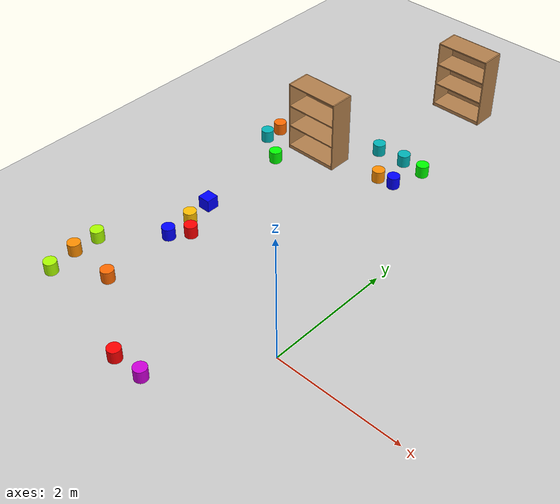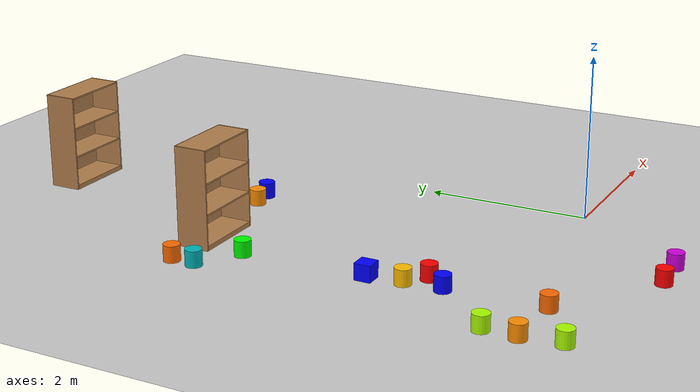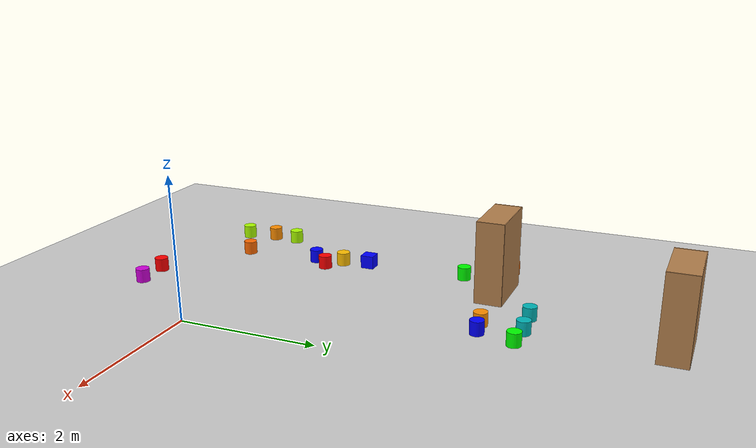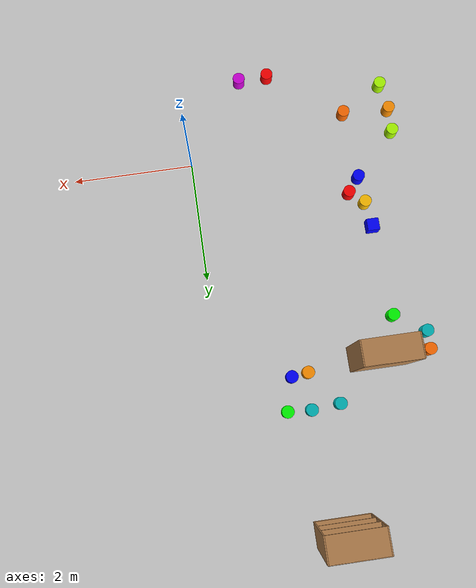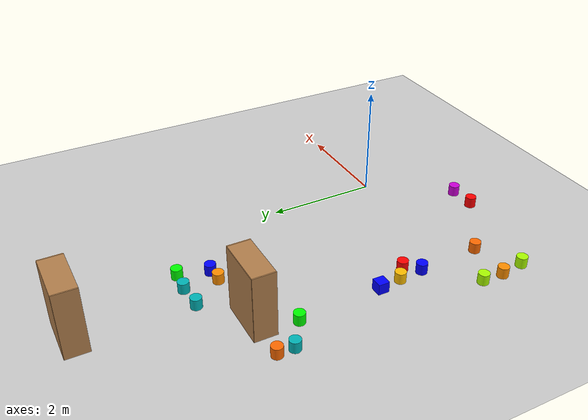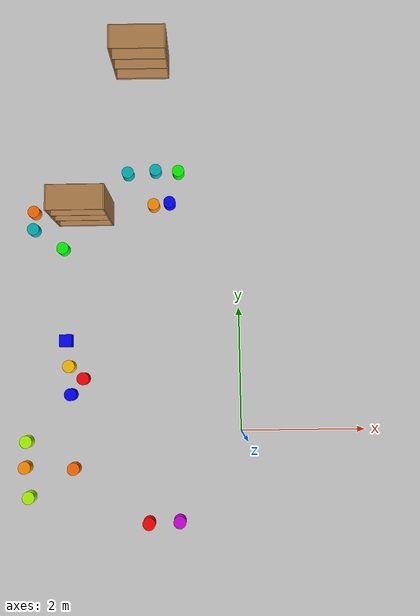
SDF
<sdf version="1.6">
 <world name="default">
  <model name="ground_plane">
   <static>1</static>
   <link name="link">
    <collision name="collision">
     <geometry><plane><normal>0 0 1</normal><size>100 100</size></plane></geometry>
     <surface>
      <contact><collide_bitmask>65535</collide_bitmask></contact>
      <friction><ode><mu>100</mu><mu2>50</mu2></ode></friction>
     </surface>
    </collision>
    <visual name="visual">
     <cast_shadows>0</cast_shadows>
     <geometry><plane><normal>0 0 1</normal><size>100 100</size></plane></geometry>
     <material>
      <script><uri>file://media/materials/scripts/gazebo.material</uri><name>Gazebo/Grey</name></script>
     </material>
    </visual>
   </link>
  </model>
  <model name="bookshelf_0">
   <static>1</static>
   <link name="link">
    <inertial><mass>1</mass></inertial>
    <collision name="back">
     <pose>0 0.005 0.6 0 -0 0</pose>
     <geometry><box><size>0.9 0.01 1.2</size></box></geometry>
    </collision>
    <visual name="visual1">
     <pose>0 0.005 0.6 0 -0 0</pose>
     <geometry><box><size>0.9 0.01 1.2</size></box></geometry>
     <material>
      <script><uri>file://media/materials/scripts/gazebo.material</uri><name>Gazebo/Wood</name></script>
     </material>
    </visual>
    <collision name="left_side">
     <pose>0.45 -0.195 0.6 0 -0 0</pose>
     <geometry><box><size>0.02 0.4 1.2</size></box></geometry>
    </collision>
    <visual name="visual2">
     <pose>0.45 -0.195 0.6 0 -0 0</pose>
     <geometry><box><size>0.02 0.4 1.2</size></box></geometry>
     <material>
      <script><uri>file://media/materials/scripts/gazebo.material</uri><name>Gazebo/Wood</name></script>
     </material>
    </visual>
    <collision name="right_side">
     <pose>-0.45 -0.195 0.6 0 -0 0</pose>
     <geometry><box><size>0.02 0.4 1.2</size></box></geometry>
    </collision>
    <visual name="visual3">
     <pose>-0.45 -0.195 0.6 0 -0 0</pose>
     <geometry><box><size>0.02 0.4 1.2</size></box></geometry>
     <material>
      <script><uri>file://media/materials/scripts/gazebo.material</uri><name>Gazebo/Wood</name></script>
     </material>
    </visual>
    <collision name="bottom">
     <pose>0 -0.195 0.03 0 -0 0</pose>
     <geometry><box><size>0.88 0.4 0.06</size></box></geometry>
    </collision>
    <visual name="visual4">
     <pose>0 -0.195 0.03 0 -0 0</pose>
     <geometry><box><size>0.88 0.4 0.06</size></box></geometry>
     <material>
      <script><uri>file://media/materials/scripts/gazebo.material</uri><name>Gazebo/Wood</name></script>
     </material>
    </visual>
    <collision name="top">
     <pose>0 -0.195 1.19 0 -0 0</pose>
     <geometry><box><size>0.88 0.4 0.02</size></box></geometry>
    </collision>
    <visual name="visual5">
     <pose>0 -0.195 1.19 0 -0 0</pose>
     <geometry><box><size>0.88 0.4 0.02</size></box></geometry>
     <material>
      <script><uri>file://media/materials/scripts/gazebo.material</uri><name>Gazebo/Wood</name></script>
     </material>
    </visual>
    <collision name="low_shelf">
     <pose>0 -0.195 0.43 0 -0 0</pose>
     <geometry><box><size>0.88 0.4 0.02</size></box></geometry>
    </collision>
    <visual name="visual6">
     <pose>0 -0.195 0.43 0 -0 0</pose>
     <geometry><box><size>0.88 0.4 0.02</size></box></geometry>
     <material>
      <script><uri>file://media/materials/scripts/gazebo.material</uri><name>Gazebo/Wood</name></script>
     </material>
    </visual>
    <collision name="high_shelf">
     <pose>0 -0.195 0.8 0 -0 0</pose>
     <geometry><box><size>0.88 0.4 0.02</size></box></geometry>
    </collision>
    <visual name="visual7">
     <pose>0 -0.195 0.8 0 -0 0</pose>
     <geometry><box><size>0.88 0.4 0.02</size></box></geometry>
     <material>
      <script><uri>file://media/materials/scripts/gazebo.material</uri><name>Gazebo/Wood</name></script>
     </material>
    </visual>
   </link>
   <pose>-2.53858 3.82708 0 0 -0 0</pose>
  </model>
  <model name="bookshelf_1">
   <static>1</static>
   <link name="link">
    <inertial><mass>1</mass></inertial>
    <collision name="back">
     <pose>0 0.005 0.6 0 -0 0</pose>
     <geometry><box><size>0.9 0.01 1.2</size></box></geometry>
    </collision>
    <visual name="visual1">
     <pose>0 0.005 0.6 0 -0 0</pose>
     <geometry><box><size>0.9 0.01 1.2</size></box></geometry>
     <material>
      <script><uri>file://media/materials/scripts/gazebo.material</uri><name>Gazebo/Wood</name></script>
     </material>
    </visual>
    <collision name="left_side">
     <pose>0.45 -0.195 0.6 0 -0 0</pose>
     <geometry><box><size>0.02 0.4 1.2</size></box></geometry>
    </collision>
    <visual name="visual2">
     <pose>0.45 -0.195 0.6 0 -0 0</pose>
     <geometry><box><size>0.02 0.4 1.2</size></box></geometry>
     <material>
      <script><uri>file://media/materials/scripts/gazebo.material</uri><name>Gazebo/Wood</name></script>
     </material>
    </visual>
    <collision name="right_side">
     <pose>-0.45 -0.195 0.6 0 -0 0</pose>
     <geometry><box><size>0.02 0.4 1.2</size></box></geometry>
    </collision>
    <visual name="visual3">
     <pose>-0.45 -0.195 0.6 0 -0 0</pose>
     <geometry><box><size>0.02 0.4 1.2</size></box></geometry>
     <material>
      <script><uri>file://media/materials/scripts/gazebo.material</uri><name>Gazebo/Wood</name></script>
     </material>
    </visual>
    <collision name="bottom">
     <pose>0 -0.195 0.03 0 -0 0</pose>
     <geometry><box><size>0.88 0.4 0.06</size></box></geometry>
    </collision>
    <visual name="visual4">
     <pose>0 -0.195 0.03 0 -0 0</pose>
     <geometry><box><size>0.88 0.4 0.06</size></box></geometry>
     <material>
      <script><uri>file://media/materials/scripts/gazebo.material</uri><name>Gazebo/Wood</name></script>
     </material>
    </visual>
    <collision name="top">
     <pose>0 -0.195 1.19 0 -0 0</pose>
     <geometry><box><size>0.88 0.4 0.02</size></box></geometry>
    </collision>
    <visual name="visual5">
     <pose>0 -0.195 1.19 0 -0 0</pose>
     <geometry><box><size>0.88 0.4 0.02</size></box></geometry>
     <material>
      <script><uri>file://media/materials/scripts/gazebo.material</uri><name>Gazebo/Wood</name></script>
     </material>
    </visual>
    <collision name="low_shelf">
     <pose>0 -0.195 0.43 0 -0 0</pose>
     <geometry><box><size>0.88 0.4 0.02</size></box></geometry>
    </collision>
    <visual name="visual6">
     <pose>0 -0.195 0.43 0 -0 0</pose>
     <geometry><box><size>0.88 0.4 0.02</size></box></geometry>
     <material>
      <script><uri>file://media/materials/scripts/gazebo.material</uri><name>Gazebo/Wood</name></script>
     </material>
    </visual>
    <collision name="high_shelf">
     <pose>0 -0.195 0.8 0 -0 0</pose>
     <geometry><box><size>0.88 0.4 0.02</size></box></geometry>
    </collision>
    <visual name="visual7">
     <pose>0 -0.195 0.8 0 -0 0</pose>
     <geometry><box><size>0.88 0.4 0.02</size></box></geometry>
     <material>
      <script><uri>file://media/materials/scripts/gazebo.material</uri><name>Gazebo/Wood</name></script>
     </material>
    </visual>
   </link>
   <pose>-1.57855 6.4226 0 0 -0 0</pose>
  </model>
  <model name="cylinder_or_5">
   <link name="link_0">
    <pose>0 0 0.1 0 -0 0</pose>
    <inertial>
     <mass>1</mass>
     <inertia><ixx>0.145833</ixx><ixy>0</ixy><ixz>0</ixz><iyy>0.145833</iyy><iyz>0</iyz><izz>0.125</izz></inertia>
    </inertial>
    <visual name="visual">
     <geometry><cylinder><radius>0.1</radius><length>0.2</length></cylinder></geometry>
     <material>
      <lighting>1</lighting>
      <script><uri>file://media/materials/scripts/gazebo.material</uri><name>Gazebo/Grey</name></script>
      <ambient>1 0.416 0 1</ambient>
      <diffuse>1 0.416 0 1</diffuse>
      <specular>0 0 0 1</specular>
      <emissive>0 0 0 1</emissive>
      <shader type="vertex"><normal_map>__default__</normal_map></shader>
     </material>
    </visual>
    <collision name="collision">
     <geometry><cylinder><radius>0.1</radius><length>0.2</length></cylinder></geometry>
     <surface>
      <friction>
       <ode><mu>1</mu><mu2>1</mu2><fdir1>0 0 0</fdir1><slip1>0</slip1><slip2>0</slip2></ode>
       <torsional>
        <coefficient>1</coefficient>
        <patch_radius>0</patch_radius>
        <surface_radius>0</surface_radius>
        <use_patch_radius>1</use_patch_radius>
        <ode><slip>0</slip></ode>
       </torsional>
      </friction>
      <bounce><restitution_coefficient>0</restitution_coefficient><threshold>1e+06</threshold></bounce>
      <contact>
       <collide_without_contact>0</collide_without_contact>
       <collide_without_contact_bitmask>1</collide_without_contact_bitmask>
       <collide_bitmask>1</collide_bitmask>
       <ode>
        <soft_cfm>0</soft_cfm>
        <soft_erp>0.2</soft_erp>
        <kp>1e+13</kp>
        <kd>1</kd>
        <max_vel>0.01</max_vel>
        <min_depth>0</min_depth>
       </ode>
       <bullet>
        <split_impulse>1</split_impulse>
        <split_impulse_penetration_threshold>-0.01</split_impulse_penetration_threshold>
        <soft_cfm>0</soft_cfm>
        <soft_erp>0.2</soft_erp>
        <kp>1e+13</kp>
        <kd>1</kd>
       </bullet>
      </contact>
     </surface>
    </collision>
   </link>
   <static>1</static>
   <pose>-2.69001 -0.548134 0 0 -0 0</pose>
  </model>
  <model name="cylinder_g_0">
   <link name="link_0">
    <pose>0 0 0.1 0 -0 0</pose>
    <inertial>
     <mass>1</mass>
     <inertia><ixx>0.145833</ixx><ixy>0</ixy><ixz>0</ixz><iyy>0.145833</iyy><iyz>0</iyz><izz>0.125</izz></inertia>
    </inertial>
    <visual name="visual">
     <geometry><cylinder><radius>0.1</radius><length>0.2</length></cylinder></geometry>
     <material>
      <lighting>1</lighting>
      <script><uri>file://media/materials/scripts/gazebo.material</uri><name>Gazebo/Grey</name></script>
      <ambient>0 1 0 1</ambient>
      <diffuse>0 1 0 1</diffuse>
      <specular>0 0 0 1</specular>
      <emissive>0 0 0 1</emissive>
      <shader type="vertex"><normal_map>__default__</normal_map></shader>
     </material>
    </visual>
    <collision name="collision">
     <geometry><cylinder><radius>0.1</radius><length>0.2</length></cylinder></geometry>
     <surface>
      <friction>
       <ode><mu>1</mu><mu2>1</mu2><fdir1>0 0 0</fdir1><slip1>0</slip1><slip2>0</slip2></ode>
       <torsional>
        <coefficient>1</coefficient>
        <patch_radius>0</patch_radius>
        <surface_radius>0</surface_radius>
        <use_patch_radius>1</use_patch_radius>
        <ode><slip>0</slip></ode>
       </torsional>
      </friction>
      <bounce><restitution_coefficient>0</restitution_coefficient><threshold>1e+06</threshold></bounce>
      <contact>
       <collide_without_contact>0</collide_without_contact>
       <collide_without_contact_bitmask>1</collide_without_contact_bitmask>
       <collide_bitmask>1</collide_bitmask>
       <ode>
        <soft_cfm>0</soft_cfm>
        <soft_erp>0.2</soft_erp>
        <kp>1e+13</kp>
        <kd>1</kd>
        <max_vel>0.01</max_vel>
        <min_depth>0</min_depth>
       </ode>
       <bullet>
        <split_impulse>1</split_impulse>
        <split_impulse_penetration_threshold>-0.01</split_impulse_penetration_threshold>
        <soft_cfm>0</soft_cfm>
        <soft_erp>0.2</soft_erp>
        <kp>1e+13</kp>
        <kd>1</kd>
       </bullet>
      </contact>
     </surface>
    </collision>
   </link>
   <static>1</static>
   <pose>-2.90474 3.02145 0 0 -0 0</pose>
  </model>
  <model name="cylinder_yo_0">
   <link name="link_0">
    <pose>0 0 0.1 0 -0 0</pose>
    <inertial>
     <mass>1</mass>
     <inertia><ixx>0.145833</ixx><ixy>0</ixy><ixz>0</ixz><iyy>0.145833</iyy><iyz>0</iyz><izz>0.125</izz></inertia>
    </inertial>
    <visual name="visual">
     <geometry><cylinder><radius>0.1</radius><length>0.2</length></cylinder></geometry>
     <material>
      <lighting>1</lighting>
      <script><uri>file://media/materials/scripts/gazebo.material</uri><name>Gazebo/Grey</name></script>
      <ambient>1 0.749 0 1</ambient>
      <diffuse>1 0.749 0 1</diffuse>
      <specular>0 0 0 1</specular>
      <emissive>0 0 0 1</emissive>
      <shader type="vertex"><normal_map>__default__</normal_map></shader>
     </material>
    </visual>
    <collision name="collision">
     <geometry><cylinder><radius>0.1</radius><length>0.2</length></cylinder></geometry>
     <surface>
      <friction>
       <ode><mu>1</mu><mu2>1</mu2><fdir1>0 0 0</fdir1><slip1>0</slip1><slip2>0</slip2></ode>
       <torsional>
        <coefficient>1</coefficient>
        <patch_radius>0</patch_radius>
        <surface_radius>0</surface_radius>
        <use_patch_radius>1</use_patch_radius>
        <ode><slip>0</slip></ode>
       </torsional>
      </friction>
      <bounce><restitution_coefficient>0</restitution_coefficient><threshold>1e+06</threshold></bounce>
      <contact>
       <collide_without_contact>0</collide_without_contact>
       <collide_without_contact_bitmask>1</collide_without_contact_bitmask>
       <collide_bitmask>1</collide_bitmask>
       <ode>
        <soft_cfm>0</soft_cfm>
        <soft_erp>0.2</soft_erp>
        <kp>1e+13</kp>
        <kd>1</kd>
        <max_vel>0.01</max_vel>
        <min_depth>0</min_depth>
       </ode>
       <bullet>
        <split_impulse>1</split_impulse>
        <split_impulse_penetration_threshold>-0.01</split_impulse_penetration_threshold>
        <soft_cfm>0</soft_cfm>
        <soft_erp>0.2</soft_erp>
        <kp>1e+13</kp>
        <kd>1</kd>
       </bullet>
      </contact>
     </surface>
    </collision>
   </link>
   <static>1</static>
   <pose>-2.7848 1.07496 0 0 -0 0</pose>
  </model>
  <model name="cylinder_r">
   <link name="link_0">
    <pose>0 0 0.1 0 -0 0</pose>
    <inertial>
     <mass>1</mass>
     <inertia><ixx>0.145833</ixx><ixy>0</ixy><ixz>0</ixz><iyy>0.145833</iyy><iyz>0</iyz><izz>0.125</izz></inertia>
    </inertial>
    <visual name="visual">
     <geometry><cylinder><radius>0.1</radius><length>0.2</length></cylinder></geometry>
     <material>
      <lighting>1</lighting>
      <script><uri>file://media/materials/scripts/gazebo.material</uri><name>Gazebo/Grey</name></script>
      <ambient>1 0 0 1</ambient>
      <diffuse>1 0 0 1</diffuse>
      <specular>0 0 0 1</specular>
      <emissive>0 0 0 1</emissive>
      <shader type="vertex"><normal_map>__default__</normal_map></shader>
     </material>
    </visual>
    <collision name="collision">
     <geometry><cylinder><radius>0.1</radius><length>0.2</length></cylinder></geometry>
     <surface>
      <friction>
       <ode><mu>1</mu><mu2>1</mu2><fdir1>0 0 0</fdir1><slip1>0</slip1><slip2>0</slip2></ode>
       <torsional>
        <coefficient>1</coefficient>
        <patch_radius>0</patch_radius>
        <surface_radius>0</surface_radius>
        <use_patch_radius>1</use_patch_radius>
        <ode><slip>0</slip></ode>
       </torsional>
      </friction>
      <bounce><restitution_coefficient>0</restitution_coefficient><threshold>1e+06</threshold></bounce>
      <contact>
       <collide_without_contact>0</collide_without_contact>
       <collide_without_contact_bitmask>1</collide_without_contact_bitmask>
       <collide_bitmask>1</collide_bitmask>
       <ode>
        <soft_cfm>0</soft_cfm>
        <soft_erp>0.2</soft_erp>
        <kp>1e+13</kp>
        <kd>1</kd>
        <max_vel>0.01</max_vel>
        <min_depth>0</min_depth>
       </ode>
       <bullet>
        <split_impulse>1</split_impulse>
        <split_impulse_penetration_threshold>-0.01</split_impulse_penetration_threshold>
        <soft_cfm>0</soft_cfm>
        <soft_erp>0.2</soft_erp>
        <kp>1e+13</kp>
        <kd>1</kd>
       </bullet>
      </contact>
     </surface>
    </collision>
   </link>
   <static>1</static>
   <pose>-2.54966 0.873883 0 0 -0 0</pose>
  </model>
  <model name="cylinder_b_7">
   <link name="link_0">
    <pose>0 0 0.1 0 -0 0</pose>
    <inertial>
     <mass>1</mass>
     <inertia><ixx>0.145833</ixx><ixy>0</ixy><ixz>0</ixz><iyy>0.145833</iyy><iyz>0</iyz><izz>0.125</izz></inertia>
    </inertial>
    <visual name="visual">
     <geometry><cylinder><radius>0.1</radius><length>0.2</length></cylinder></geometry>
     <material>
      <lighting>1</lighting>
      <script><uri>file://media/materials/scripts/gazebo.material</uri><name>Gazebo/Grey</name></script>
      <ambient>0 0 1 1</ambient>
      <diffuse>0 0 1 1</diffuse>
      <specular>0 0 0 1</specular>
      <emissive>0 0 0 1</emissive>
      <shader type="vertex"><normal_map>__default__</normal_map></shader>
     </material>
    </visual>
    <collision name="collision">
     <geometry><cylinder><radius>0.1</radius><length>0.2</length></cylinder></geometry>
     <surface>
      <friction>
       <ode><mu>1</mu><mu2>1</mu2><fdir1>0 0 0</fdir1><slip1>0</slip1><slip2>0</slip2></ode>
       <torsional>
        <coefficient>1</coefficient>
        <patch_radius>0</patch_radius>
        <surface_radius>0</surface_radius>
        <use_patch_radius>1</use_patch_radius>
        <ode><slip>0</slip></ode>
       </torsional>
      </friction>
      <bounce><restitution_coefficient>0</restitution_coefficient><threshold>1e+06</threshold></bounce>
      <contact>
       <collide_without_contact>0</collide_without_contact>
       <collide_without_contact_bitmask>1</collide_without_contact_bitmask>
       <collide_bitmask>1</collide_bitmask>
       <ode>
        <soft_cfm>0</soft_cfm>
        <soft_erp>0.2</soft_erp>
        <kp>1e+13</kp>
        <kd>1</kd>
        <max_vel>0.01</max_vel>
        <min_depth>0</min_depth>
       </ode>
       <bullet>
        <split_impulse>1</split_impulse>
        <split_impulse_penetration_threshold>-0.01</split_impulse_penetration_threshold>
        <soft_cfm>0</soft_cfm>
        <soft_erp>0.2</soft_erp>
        <kp>1e+13</kp>
        <kd>1</kd>
       </bullet>
      </contact>
     </surface>
    </collision>
   </link>
   <static>1</static>
   <pose>-2.75067 0.621996 0 0 -0 0</pose>
  </model>
  <model name="cylinder_b_8">
   <link name="link_0">
    <pose>0 0 0.1 0 -0 0</pose>
    <inertial>
     <mass>1</mass>
     <inertia><ixx>0.145833</ixx><ixy>0</ixy><ixz>0</ixz><iyy>0.145833</iyy><iyz>0</iyz><izz>0.125</izz></inertia>
    </inertial>
    <visual name="visual">
     <geometry><cylinder><radius>0.1</radius><length>0.2</length></cylinder></geometry>
     <material>
      <lighting>1</lighting>
      <script><uri>file://media/materials/scripts/gazebo.material</uri><name>Gazebo/Grey</name></script>
      <ambient>0 0 1 1</ambient>
      <diffuse>0 0 1 1</diffuse>
      <specular>0 0 0 1</specular>
      <emissive>0 0 0 1</emissive>
      <shader type="vertex"><normal_map>__default__</normal_map></shader>
     </material>
    </visual>
    <collision name="collision">
     <geometry><cylinder><radius>0.1</radius><length>0.2</length></cylinder></geometry>
     <surface>
      <friction>
       <ode><mu>1</mu><mu2>1</mu2><fdir1>0 0 0</fdir1><slip1>0</slip1><slip2>0</slip2></ode>
       <torsional>
        <coefficient>1</coefficient>
        <patch_radius>0</patch_radius>
        <surface_radius>0</surface_radius>
        <use_patch_radius>1</use_patch_radius>
        <ode><slip>0</slip></ode>
       </torsional>
      </friction>
      <bounce><restitution_coefficient>0</restitution_coefficient><threshold>1e+06</threshold></bounce>
      <contact>
       <collide_without_contact>0</collide_without_contact>
       <collide_without_contact_bitmask>1</collide_without_contact_bitmask>
       <collide_bitmask>1</collide_bitmask>
       <ode>
        <soft_cfm>0</soft_cfm>
        <soft_erp>0.2</soft_erp>
        <kp>1e+13</kp>
        <kd>1</kd>
        <max_vel>0.01</max_vel>
        <min_depth>0</min_depth>
       </ode>
       <bullet>
        <split_impulse>1</split_impulse>
        <split_impulse_penetration_threshold>-0.01</split_impulse_penetration_threshold>
        <soft_cfm>0</soft_cfm>
        <soft_erp>0.2</soft_erp>
        <kp>1e+13</kp>
        <kd>1</kd>
       </bullet>
      </contact>
     </surface>
    </collision>
   </link>
   <static>1</static>
   <pose>-1.12673 3.77869 0 0 -0 0</pose>
  </model>
  <model name="cylinder_o_0">
   <link name="link_0">
    <pose>0 0 0.1 0 -0 0</pose>
    <inertial>
     <mass>1</mass>
     <inertia><ixx>0.145833</ixx><ixy>0</ixy><ixz>0</ixz><iyy>0.145833</iyy><iyz>0</iyz><izz>0.125</izz></inertia>
    </inertial>
    <visual name="visual">
     <geometry><cylinder><radius>0.1</radius><length>0.2</length></cylinder></geometry>
     <material>
      <lighting>1</lighting>
      <script><uri>file://media/materials/scripts/gazebo.material</uri><name>Gazebo/Grey</name></script>
      <ambient>1 0.561 0 1</ambient>
      <diffuse>1 0.561 0 1</diffuse>
      <specular>0 0 0 1</specular>
      <emissive>0 0 0 1</emissive>
      <shader type="vertex"><normal_map>__default__</normal_map></shader>
     </material>
    </visual>
    <collision name="collision">
     <geometry><cylinder><radius>0.1</radius><length>0.2</length></cylinder></geometry>
     <surface>
      <friction>
       <ode><mu>1</mu><mu2>1</mu2><fdir1>0 0 0</fdir1><slip1>0</slip1><slip2>0</slip2></ode>
       <torsional>
        <coefficient>1</coefficient>
        <patch_radius>0</patch_radius>
        <surface_radius>0</surface_radius>
        <use_patch_radius>1</use_patch_radius>
        <ode><slip>0</slip></ode>
       </torsional>
      </friction>
      <bounce><restitution_coefficient>0</restitution_coefficient><threshold>1e+06</threshold></bounce>
      <contact>
       <collide_without_contact>0</collide_without_contact>
       <collide_without_contact_bitmask>1</collide_without_contact_bitmask>
       <collide_bitmask>1</collide_bitmask>
       <ode>
        <soft_cfm>0</soft_cfm>
        <soft_erp>0.2</soft_erp>
        <kp>1e+13</kp>
        <kd>1</kd>
        <max_vel>0.01</max_vel>
        <min_depth>0</min_depth>
       </ode>
       <bullet>
        <split_impulse>1</split_impulse>
        <split_impulse_penetration_threshold>-0.01</split_impulse_penetration_threshold>
        <soft_cfm>0</soft_cfm>
        <soft_erp>0.2</soft_erp>
        <kp>1e+13</kp>
        <kd>1</kd>
       </bullet>
      </contact>
     </surface>
    </collision>
   </link>
   <static>1</static>
   <pose>-1.39522 3.74482 0 0 -0 0</pose>
  </model>
  <model name="cylinder_r_2">
   <link name="link_0">
    <pose>0 0 0.1 0 -0 0</pose>
    <inertial>
     <mass>1</mass>
     <inertia><ixx>0.145833</ixx><ixy>0</ixy><ixz>0</ixz><iyy>0.145833</iyy><iyz>0</iyz><izz>0.125</izz></inertia>
    </inertial>
    <visual name="visual">
     <geometry><cylinder><radius>0.1</radius><length>0.2</length></cylinder></geometry>
     <material>
      <lighting>1</lighting>
      <script><uri>file://media/materials/scripts/gazebo.material</uri><name>Gazebo/Grey</name></script>
      <ambient>1 0 0 1</ambient>
      <diffuse>1 0 0 1</diffuse>
      <specular>0 0 0 1</specular>
      <emissive>0 0 0 1</emissive>
      <shader type="vertex"><normal_map>__default__</normal_map></shader>
     </material>
    </visual>
    <collision name="collision">
     <geometry><cylinder><radius>0.1</radius><length>0.2</length></cylinder></geometry>
     <surface>
      <friction>
       <ode><mu>1</mu><mu2>1</mu2><fdir1>0 0 0</fdir1><slip1>0</slip1><slip2>0</slip2></ode>
       <torsional>
        <coefficient>1</coefficient>
        <patch_radius>0</patch_radius>
        <surface_radius>0</surface_radius>
        <use_patch_radius>1</use_patch_radius>
        <ode><slip>0</slip></ode>
       </torsional>
      </friction>
      <bounce><restitution_coefficient>0</restitution_coefficient><threshold>1e+06</threshold></bounce>
      <contact>
       <collide_without_contact>0</collide_without_contact>
       <collide_without_contact_bitmask>1</collide_without_contact_bitmask>
       <collide_bitmask>1</collide_bitmask>
       <ode>
        <soft_cfm>0</soft_cfm>
        <soft_erp>0.2</soft_erp>
        <kp>1e+13</kp>
        <kd>1</kd>
        <max_vel>0.01</max_vel>
        <min_depth>0</min_depth>
       </ode>
       <bullet>
        <split_impulse>1</split_impulse>
        <split_impulse_penetration_threshold>-0.01</split_impulse_penetration_threshold>
        <soft_cfm>0</soft_cfm>
        <soft_erp>0.2</soft_erp>
        <kp>1e+13</kp>
        <kd>1</kd>
       </bullet>
      </contact>
     </surface>
    </collision>
   </link>
   <static>1</static>
   <pose>-1.48984 -1.40647 0 0 -0 0</pose>
  </model>
  <model name="cylinder_rv">
   <link name="link_0">
    <pose>0 0 0.1 0 -0 0</pose>
    <inertial>
     <mass>1</mass>
     <inertia><ixx>0.145833</ixx><ixy>0</ixy><ixz>0</ixz><iyy>0.145833</iyy><iyz>0</iyz><izz>0.125</izz></inertia>
    </inertial>
    <visual name="visual">
     <geometry><cylinder><radius>0.1</radius><length>0.2</length></cylinder></geometry>
     <material>
      <lighting>1</lighting>
      <script><uri>file://media/materials/scripts/gazebo.material</uri><name>Gazebo/Grey</name></script>
      <ambient>0.816 0 0.855 1</ambient>
      <diffuse>0.816 0 0.855 1</diffuse>
      <specular>0 0 0 1</specular>
      <emissive>0 0 0 1</emissive>
      <shader type="vertex"><normal_map>__default__</normal_map></shader>
     </material>
    </visual>
    <collision name="collision">
     <geometry><cylinder><radius>0.1</radius><length>0.2</length></cylinder></geometry>
     <surface>
      <friction>
       <ode><mu>1</mu><mu2>1</mu2><fdir1>0 0 0</fdir1><slip1>0</slip1><slip2>0</slip2></ode>
       <torsional>
        <coefficient>1</coefficient>
        <patch_radius>0</patch_radius>
        <surface_radius>0</surface_radius>
        <use_patch_radius>1</use_patch_radius>
        <ode><slip>0</slip></ode>
       </torsional>
      </friction>
      <bounce><restitution_coefficient>0</restitution_coefficient><threshold>1e+06</threshold></bounce>
      <contact>
       <collide_without_contact>0</collide_without_contact>
       <collide_without_contact_bitmask>1</collide_without_contact_bitmask>
       <collide_bitmask>1</collide_bitmask>
       <ode>
        <soft_cfm>0</soft_cfm>
        <soft_erp>0.2</soft_erp>
        <kp>1e+13</kp>
        <kd>1</kd>
        <max_vel>0.01</max_vel>
        <min_depth>0</min_depth>
       </ode>
       <bullet>
        <split_impulse>1</split_impulse>
        <split_impulse_penetration_threshold>-0.01</split_impulse_penetration_threshold>
        <soft_cfm>0</soft_cfm>
        <soft_erp>0.2</soft_erp>
        <kp>1e+13</kp>
        <kd>1</kd>
       </bullet>
      </contact>
     </surface>
    </collision>
   </link>
   <static>1</static>
   <pose>-1.00333 -1.38913 0 0 -0 0</pose>
  </model>
  <model name="cylinder_o_1">
   <link name="link_0">
    <pose>0 0 0.1 0 -0 0</pose>
    <inertial>
     <mass>1</mass>
     <inertia><ixx>0.145833</ixx><ixy>0</ixy><ixz>0</ixz><iyy>0.145833</iyy><iyz>0</iyz><izz>0.125</izz></inertia>
    </inertial>
    <visual name="visual">
     <geometry><cylinder><radius>0.1</radius><length>0.2</length></cylinder></geometry>
     <material>
      <lighting>1</lighting>
      <script><uri>file://media/materials/scripts/gazebo.material</uri><name>Gazebo/Grey</name></script>
      <ambient>1 0.561 0 1</ambient>
      <diffuse>1 0.561 0 1</diffuse>
      <specular>0 0 0 1</specular>
      <emissive>0 0 0 1</emissive>
      <shader type="vertex"><normal_map>__default__</normal_map></shader>
     </material>
    </visual>
    <collision name="collision">
     <geometry><cylinder><radius>0.1</radius><length>0.2</length></cylinder></geometry>
     <surface>
      <friction>
       <ode><mu>1</mu><mu2>1</mu2><fdir1>0 0 0</fdir1><slip1>0</slip1><slip2>0</slip2></ode>
       <torsional>
        <coefficient>1</coefficient>
        <patch_radius>0</patch_radius>
        <surface_radius>0</surface_radius>
        <use_patch_radius>1</use_patch_radius>
        <ode><slip>0</slip></ode>
       </torsional>
      </friction>
      <bounce><restitution_coefficient>0</restitution_coefficient><threshold>1e+06</threshold></bounce>
      <contact>
       <collide_without_contact>0</collide_without_contact>
       <collide_without_contact_bitmask>1</collide_without_contact_bitmask>
       <collide_bitmask>1</collide_bitmask>
       <ode>
        <soft_cfm>0</soft_cfm>
        <soft_erp>0.2</soft_erp>
        <kp>1e+13</kp>
        <kd>1</kd>
        <max_vel>0.01</max_vel>
        <min_depth>0</min_depth>
       </ode>
       <bullet>
        <split_impulse>1</split_impulse>
        <split_impulse_penetration_threshold>-0.01</split_impulse_penetration_threshold>
        <soft_cfm>0</soft_cfm>
        <soft_erp>0.2</soft_erp>
        <kp>1e+13</kp>
        <kd>1</kd>
       </bullet>
      </contact>
     </surface>
    </collision>
   </link>
   <static>1</static>
   <pose>-3.46882 -0.517609 0 0 -0 0</pose>
  </model>
  <model name="cylinder_or_6">
   <link name="link_0">
    <pose>0 0 0.1 0 -0 0</pose>
    <inertial>
     <mass>1</mass>
     <inertia><ixx>0.145833</ixx><ixy>0</ixy><ixz>0</ixz><iyy>0.145833</iyy><iyz>0</iyz><izz>0.125</izz></inertia>
    </inertial>
    <visual name="visual">
     <geometry><cylinder><radius>0.1</radius><length>0.2</length></cylinder></geometry>
     <material>
      <lighting>1</lighting>
      <script><uri>file://media/materials/scripts/gazebo.material</uri><name>Gazebo/Grey</name></script>
      <ambient>1 0.416 0 1</ambient>
      <diffuse>1 0.416 0 1</diffuse>
      <specular>0 0 0 1</specular>
      <emissive>0 0 0 1</emissive>
      <shader type="vertex"><normal_map>__default__</normal_map></shader>
     </material>
    </visual>
    <collision name="collision">
     <geometry><cylinder><radius>0.1</radius><length>0.2</length></cylinder></geometry>
     <surface>
      <friction>
       <ode><mu>1</mu><mu2>1</mu2><fdir1>0 0 0</fdir1><slip1>0</slip1><slip2>0</slip2></ode>
       <torsional>
        <coefficient>1</coefficient>
        <patch_radius>0</patch_radius>
        <surface_radius>0</surface_radius>
        <use_patch_radius>1</use_patch_radius>
        <ode><slip>0</slip></ode>
       </torsional>
      </friction>
      <bounce><restitution_coefficient>0</restitution_coefficient><threshold>1e+06</threshold></bounce>
      <contact>
       <collide_without_contact>0</collide_without_contact>
       <collide_without_contact_bitmask>1</collide_without_contact_bitmask>
       <collide_bitmask>1</collide_bitmask>
       <ode>
        <soft_cfm>0</soft_cfm>
        <soft_erp>0.2</soft_erp>
        <kp>1e+13</kp>
        <kd>1</kd>
        <max_vel>0.01</max_vel>
        <min_depth>0</min_depth>
       </ode>
       <bullet>
        <split_impulse>1</split_impulse>
        <split_impulse_penetration_threshold>-0.01</split_impulse_penetration_threshold>
        <soft_cfm>0</soft_cfm>
        <soft_erp>0.2</soft_erp>
        <kp>1e+13</kp>
        <kd>1</kd>
       </bullet>
      </contact>
     </surface>
    </collision>
   </link>
   <static>1</static>
   <pose>-3.39272 3.64605 0 0 -0 0</pose>
  </model>
  <model name="cylinder_bg_2">
   <link name="link_0">
    <pose>0 0 0.1 0 -0 0</pose>
    <inertial>
     <mass>1</mass>
     <inertia><ixx>0.145833</ixx><ixy>0</ixy><ixz>0</ixz><iyy>0.145833</iyy><iyz>0</iyz><izz>0.125</izz></inertia>
    </inertial>
    <visual name="visual">
     <geometry><cylinder><radius>0.1</radius><length>0.2</length></cylinder></geometry>
     <material>
      <lighting>1</lighting>
      <script><uri>file://media/materials/scripts/gazebo.material</uri><name>Gazebo/Grey</name></script>
      <ambient>0 0.71 0.722 1</ambient>
      <diffuse>0 0.71 0.722 1</diffuse>
      <specular>0 0 0 1</specular>
      <emissive>0 0 0 1</emissive>
      <shader type="vertex"><normal_map>__default__</normal_map></shader>
     </material>
    </visual>
    <collision name="collision">
     <geometry><cylinder><radius>0.1</radius><length>0.2</length></cylinder></geometry>
     <surface>
      <friction>
       <ode><mu>1</mu><mu2>1</mu2><fdir1>0 0 0</fdir1><slip1>0</slip1><slip2>0</slip2></ode>
       <torsional>
        <coefficient>1</coefficient>
        <patch_radius>0</patch_radius>
        <surface_radius>0</surface_radius>
        <use_patch_radius>1</use_patch_radius>
        <ode><slip>0</slip></ode>
       </torsional>
      </friction>
      <bounce><restitution_coefficient>0</restitution_coefficient><threshold>1e+06</threshold></bounce>
      <contact>
       <collide_without_contact>0</collide_without_contact>
       <collide_without_contact_bitmask>1</collide_without_contact_bitmask>
       <collide_bitmask>1</collide_bitmask>
       <ode>
        <soft_cfm>0</soft_cfm>
        <soft_erp>0.2</soft_erp>
        <kp>1e+13</kp>
        <kd>1</kd>
        <max_vel>0.01</max_vel>
        <min_depth>0</min_depth>
       </ode>
       <bullet>
        <split_impulse>1</split_impulse>
        <split_impulse_penetration_threshold>-0.01</split_impulse_penetration_threshold>
        <soft_cfm>0</soft_cfm>
        <soft_erp>0.2</soft_erp>
        <kp>1e+13</kp>
        <kd>1</kd>
       </bullet>
      </contact>
     </surface>
    </collision>
   </link>
   <static>1</static>
   <pose>-3.39837 3.35082 0 0 -0 0</pose>
  </model>
  <model name="cylinder_g_2">
   <link name="link_0">
    <pose>0 0 0.1 0 -0 0</pose>
    <inertial>
     <mass>1</mass>
     <inertia><ixx>0.145833</ixx><ixy>0</ixy><ixz>0</ixz><iyy>0.145833</iyy><iyz>0</iyz><izz>0.125</izz></inertia>
    </inertial>
    <visual name="visual">
     <geometry><cylinder><radius>0.1</radius><length>0.2</length></cylinder></geometry>
     <material>
      <lighting>1</lighting>
      <script><uri>file://media/materials/scripts/gazebo.material</uri><name>Gazebo/Grey</name></script>
      <ambient>0 1 0 1</ambient>
      <diffuse>0 1 0 1</diffuse>
      <specular>0 0 0 1</specular>
      <emissive>0 0 0 1</emissive>
      <shader type="vertex"><normal_map>__default__</normal_map></shader>
     </material>
    </visual>
    <collision name="collision">
     <geometry><cylinder><radius>0.1</radius><length>0.2</length></cylinder></geometry>
     <surface>
      <friction>
       <ode><mu>1</mu><mu2>1</mu2><fdir1>0 0 0</fdir1><slip1>0</slip1><slip2>0</slip2></ode>
       <torsional>
        <coefficient>1</coefficient>
        <patch_radius>0</patch_radius>
        <surface_radius>0</surface_radius>
        <use_patch_radius>1</use_patch_radius>
        <ode><slip>0</slip></ode>
       </torsional>
      </friction>
      <bounce><restitution_coefficient>0</restitution_coefficient><threshold>1e+06</threshold></bounce>
      <contact>
       <collide_without_contact>0</collide_without_contact>
       <collide_without_contact_bitmask>1</collide_without_contact_bitmask>
       <collide_bitmask>1</collide_bitmask>
       <ode>
        <soft_cfm>0</soft_cfm>
        <soft_erp>0.2</soft_erp>
        <kp>1e+13</kp>
        <kd>1</kd>
        <max_vel>0.01</max_vel>
        <min_depth>0</min_depth>
       </ode>
       <bullet>
        <split_impulse>1</split_impulse>
        <split_impulse_penetration_threshold>-0.01</split_impulse_penetration_threshold>
        <soft_cfm>0</soft_cfm>
        <soft_erp>0.2</soft_erp>
        <kp>1e+13</kp>
        <kd>1</kd>
       </bullet>
      </contact>
     </surface>
    </collision>
   </link>
   <static>1</static>
   <pose>-0.977002 4.3141 0 0 -0 0</pose>
  </model>
  <model name="cylinder_bg_6">
   <link name="link_0">
    <pose>0 0 0.1 0 -0 0</pose>
    <inertial>
     <mass>1</mass>
     <inertia><ixx>0.145833</ixx><ixy>0</ixy><ixz>0</ixz><iyy>0.145833</iyy><iyz>0</iyz><izz>0.125</izz></inertia>
    </inertial>
    <visual name="visual">
     <geometry><cylinder><radius>0.1</radius><length>0.2</length></cylinder></geometry>
     <material>
      <lighting>1</lighting>
      <script><uri>file://media/materials/scripts/gazebo.material</uri><name>Gazebo/Grey</name></script>
      <ambient>0 0.71 0.722 1</ambient>
      <diffuse>0 0.71 0.722 1</diffuse>
      <specular>0 0 0 1</specular>
      <emissive>0 0 0 1</emissive>
      <shader type="vertex"><normal_map>__default__</normal_map></shader>
     </material>
    </visual>
    <collision name="collision">
     <geometry><cylinder><radius>0.1</radius><length>0.2</length></cylinder></geometry>
     <surface>
      <friction>
       <ode><mu>1</mu><mu2>1</mu2><fdir1>0 0 0</fdir1><slip1>0</slip1><slip2>0</slip2></ode>
       <torsional>
        <coefficient>1</coefficient>
        <patch_radius>0</patch_radius>
        <surface_radius>0</surface_radius>
        <use_patch_radius>1</use_patch_radius>
        <ode><slip>0</slip></ode>
       </torsional>
      </friction>
      <bounce><restitution_coefficient>0</restitution_coefficient><threshold>1e+06</threshold></bounce>
      <contact>
       <collide_without_contact>0</collide_without_contact>
       <collide_without_contact_bitmask>1</collide_without_contact_bitmask>
       <collide_bitmask>1</collide_bitmask>
       <ode>
        <soft_cfm>0</soft_cfm>
        <soft_erp>0.2</soft_erp>
        <kp>1e+13</kp>
        <kd>1</kd>
        <max_vel>0.01</max_vel>
        <min_depth>0</min_depth>
       </ode>
       <bullet>
        <split_impulse>1</split_impulse>
        <split_impulse_penetration_threshold>-0.01</split_impulse_penetration_threshold>
        <soft_cfm>0</soft_cfm>
        <soft_erp>0.2</soft_erp>
        <kp>1e+13</kp>
        <kd>1</kd>
       </bullet>
      </contact>
     </surface>
    </collision>
   </link>
   <static>1</static>
   <pose>-1.35988 4.338 0 0 -0 0</pose>
  </model>
  <model name="cylinder_bg_7">
   <link name="link_0">
    <pose>0 0 0.1 0 -0 0</pose>
    <inertial>
     <mass>1</mass>
     <inertia><ixx>0.145833</ixx><ixy>0</ixy><ixz>0</ixz><iyy>0.145833</iyy><iyz>0</iyz><izz>0.125</izz></inertia>
    </inertial>
    <visual name="visual">
     <geometry><cylinder><radius>0.1</radius><length>0.2</length></cylinder></geometry>
     <material>
      <lighting>1</lighting>
      <script><uri>file://media/materials/scripts/gazebo.material</uri><name>Gazebo/Grey</name></script>
      <ambient>0 0.71 0.722 1</ambient>
      <diffuse>0 0.71 0.722 1</diffuse>
      <specular>0 0 0 1</specular>
      <emissive>0 0 0 1</emissive>
      <shader type="vertex"><normal_map>__default__</normal_map></shader>
     </material>
    </visual>
    <collision name="collision">
     <geometry><cylinder><radius>0.1</radius><length>0.2</length></cylinder></geometry>
     <surface>
      <friction>
       <ode><mu>1</mu><mu2>1</mu2><fdir1>0 0 0</fdir1><slip1>0</slip1><slip2>0</slip2></ode>
       <torsional>
        <coefficient>1</coefficient>
        <patch_radius>0</patch_radius>
        <surface_radius>0</surface_radius>
        <use_patch_radius>1</use_patch_radius>
        <ode><slip>0</slip></ode>
       </torsional>
      </friction>
      <bounce><restitution_coefficient>0</restitution_coefficient><threshold>1e+06</threshold></bounce>
      <contact>
       <collide_without_contact>0</collide_without_contact>
       <collide_without_contact_bitmask>1</collide_without_contact_bitmask>
       <collide_bitmask>1</collide_bitmask>
       <ode>
        <soft_cfm>0</soft_cfm>
        <soft_erp>0.2</soft_erp>
        <kp>1e+13</kp>
        <kd>1</kd>
        <max_vel>0.01</max_vel>
        <min_depth>0</min_depth>
       </ode>
       <bullet>
        <split_impulse>1</split_impulse>
        <split_impulse_penetration_threshold>-0.01</split_impulse_penetration_threshold>
        <soft_cfm>0</soft_cfm>
        <soft_erp>0.2</soft_erp>
        <kp>1e+13</kp>
        <kd>1</kd>
       </bullet>
      </contact>
     </surface>
    </collision>
   </link>
   <static>1</static>
   <pose>-1.826 4.29889 0 0 -0 0</pose>
  </model>
  <model name="cylinder_gy_2">
   <link name="link_0">
    <pose>0 0 0.1 0 -0 0</pose>
    <inertial>
     <mass>1</mass>
     <inertia><ixx>0.145833</ixx><ixy>0</ixy><ixz>0</ixz><iyy>0.145833</iyy><iyz>0</iyz><izz>0.125</izz></inertia>
    </inertial>
    <visual name="visual">
     <geometry><cylinder><radius>0.1</radius><length>0.2</length></cylinder></geometry>
     <material>
      <lighting>1</lighting>
      <script><uri>file://media/materials/scripts/gazebo.material</uri><name>Gazebo/Grey</name></script>
      <ambient>0.675 1 0 1</ambient>
      <diffuse>0.675 1 0 1</diffuse>
      <specular>0 0 0 1</specular>
      <emissive>0 0 0 1</emissive>
      <shader type="vertex"><normal_map>__default__</normal_map></shader>
     </material>
    </visual>
    <collision name="collision">
     <geometry><cylinder><radius>0.1</radius><length>0.2</length></cylinder></geometry>
     <surface>
      <friction>
       <ode><mu>1</mu><mu2>1</mu2><fdir1>0 0 0</fdir1><slip1>0</slip1><slip2>0</slip2></ode>
       <torsional>
        <coefficient>1</coefficient>
        <patch_radius>0</patch_radius>
        <surface_radius>0</surface_radius>
        <use_patch_radius>1</use_patch_radius>
        <ode><slip>0</slip></ode>
       </torsional>
      </friction>
      <bounce><restitution_coefficient>0</restitution_coefficient><threshold>1e+06</threshold></bounce>
      <contact>
       <collide_without_contact>0</collide_without_contact>
       <collide_without_contact_bitmask>1</collide_without_contact_bitmask>
       <collide_bitmask>1</collide_bitmask>
       <ode>
        <soft_cfm>0</soft_cfm>
        <soft_erp>0.2</soft_erp>
        <kp>1e+13</kp>
        <kd>1</kd>
        <max_vel>0.01</max_vel>
        <min_depth>0</min_depth>
       </ode>
       <bullet>
        <split_impulse>1</split_impulse>
        <split_impulse_penetration_threshold>-0.01</split_impulse_penetration_threshold>
        <soft_cfm>0</soft_cfm>
        <soft_erp>0.2</soft_erp>
        <kp>1e+13</kp>
        <kd>1</kd>
       </bullet>
      </contact>
     </surface>
    </collision>
   </link>
   <static>1</static>
   <pose>-3.45552 -0.11504 0 0 -0 0</pose>
  </model>
  <model name="cylinder_gy_3">
   <link name="link_0">
    <pose>0 0 0.1 0 -0 0</pose>
    <inertial>
     <mass>1</mass>
     <inertia><ixx>0.145833</ixx><ixy>0</ixy><ixz>0</ixz><iyy>0.145833</iyy><iyz>0</iyz><izz>0.125</izz></inertia>
    </inertial>
    <visual name="visual">
     <geometry><cylinder><radius>0.1</radius><length>0.2</length></cylinder></geometry>
     <material>
      <lighting>1</lighting>
      <script><uri>file://media/materials/scripts/gazebo.material</uri><name>Gazebo/Grey</name></script>
      <ambient>0.675 1 0 1</ambient>
      <diffuse>0.675 1 0 1</diffuse>
      <specular>0 0 0 1</specular>
      <emissive>0 0 0 1</emissive>
      <shader type="vertex"><normal_map>__default__</normal_map></shader>
     </material>
    </visual>
    <collision name="collision">
     <geometry><cylinder><radius>0.1</radius><length>0.2</length></cylinder></geometry>
     <surface>
      <friction>
       <ode><mu>1</mu><mu2>1</mu2><fdir1>0 0 0</fdir1><slip1>0</slip1><slip2>0</slip2></ode>
       <torsional>
        <coefficient>1</coefficient>
        <patch_radius>0</patch_radius>
        <surface_radius>0</surface_radius>
        <use_patch_radius>1</use_patch_radius>
        <ode><slip>0</slip></ode>
       </torsional>
      </friction>
      <bounce><restitution_coefficient>0</restitution_coefficient><threshold>1e+06</threshold></bounce>
      <contact>
       <collide_without_contact>0</collide_without_contact>
       <collide_without_contact_bitmask>1</collide_without_contact_bitmask>
       <collide_bitmask>1</collide_bitmask>
       <ode>
        <soft_cfm>0</soft_cfm>
        <soft_erp>0.2</soft_erp>
        <kp>1e+13</kp>
        <kd>1</kd>
        <max_vel>0.01</max_vel>
        <min_depth>0</min_depth>
       </ode>
       <bullet>
        <split_impulse>1</split_impulse>
        <split_impulse_penetration_threshold>-0.01</split_impulse_penetration_threshold>
        <soft_cfm>0</soft_cfm>
        <soft_erp>0.2</soft_erp>
        <kp>1e+13</kp>
        <kd>1</kd>
       </bullet>
      </contact>
     </surface>
    </collision>
   </link>
   <static>1</static>
   <pose>-3.39623 -0.98155 0 0 -0 0</pose>
  </model>
  <model name="cube_b">
   <link name="link_2">
    <pose>0 0 0.1 0 -0 0</pose>
    <inertial>
     <mass>1</mass>
     <inertia>
      <ixx>0.166667</ixx>
      <ixy>0</ixy>
      <ixz>0</ixz>
      <iyy>0.166667</iyy>
      <iyz>0</iyz>
      <izz>0.166667</izz>
     </inertia>
    </inertial>
    <visual name="visual">
     <geometry><box><size>0.2 0.2 0.2</size></box></geometry>
     <material>
      <lighting>1</lighting>
      <script><uri>file://media/materials/scripts/gazebo.material</uri><name>Gazebo/Grey</name></script>
      <ambient>0 0 1 1</ambient>
      <diffuse>0 0 1 1</diffuse>
      <specular>0 0 0 1</specular>
      <emissive>0 0 0 1</emissive>
      <shader type="vertex"><normal_map>__default__</normal_map></shader>
     </material>
    </visual>
    <collision name="collision">
     <geometry><box><size>0.2 0.2 0.2</size></box></geometry>
     <surface>
      <friction>
       <ode><mu>1</mu><mu2>1</mu2><fdir1>0 0 0</fdir1><slip1>0</slip1><slip2>0</slip2></ode>
       <torsional>
        <coefficient>1</coefficient>
        <patch_radius>0</patch_radius>
        <surface_radius>0</surface_radius>
        <use_patch_radius>1</use_patch_radius>
        <ode><slip>0</slip></ode>
       </torsional>
      </friction>
      <bounce><restitution_coefficient>0</restitution_coefficient><threshold>1e+06</threshold></bounce>
      <contact>
       <collide_without_contact>0</collide_without_contact>
       <collide_without_contact_bitmask>1</collide_without_contact_bitmask>
       <collide_bitmask>1</collide_bitmask>
       <ode>
        <soft_cfm>0</soft_cfm>
        <soft_erp>0.2</soft_erp>
        <kp>1e+13</kp>
        <kd>1</kd>
        <max_vel>0.01</max_vel>
        <min_depth>0</min_depth>
       </ode>
       <bullet>
        <split_impulse>1</split_impulse>
        <split_impulse_penetration_threshold>-0.01</split_impulse_penetration_threshold>
        <soft_cfm>0</soft_cfm>
        <soft_erp>0.2</soft_erp>
        <kp>1e+13</kp>
        <kd>1</kd>
       </bullet>
      </contact>
     </surface>
    </collision>
   </link>
   <static>1</static>
   <pose>-2.83811 1.49344 0 0 -0 0</pose>
  </model>
 </world>
</sdf>
